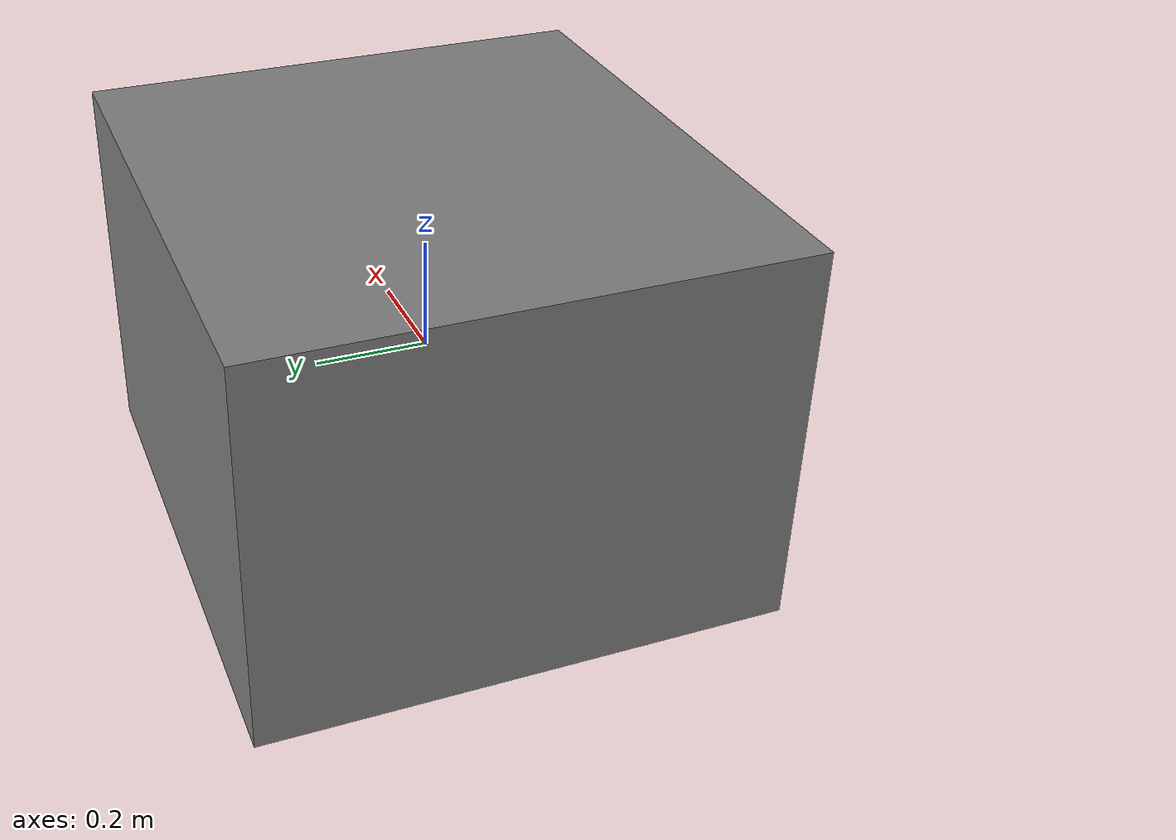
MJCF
<mujoco model="asset">
  <asset>
    <mesh name="bullet_duck_visual" file="bullet_duck.normalized.obj"/>
    <mesh name="bullet_duck_collision" file="bullet_duck.collision_box.obj"/>
  </asset>
  <worldbody><body name="bullet_duck">
    <geom type="mesh" mesh="bullet_duck_visual" contype="0" conaffinity="0" rgba="0.65 0.68 0.72 1"/>
    <geom type="mesh" mesh="bullet_duck_collision" density="1000"/>
  </body></worldbody>
</mujoco>
